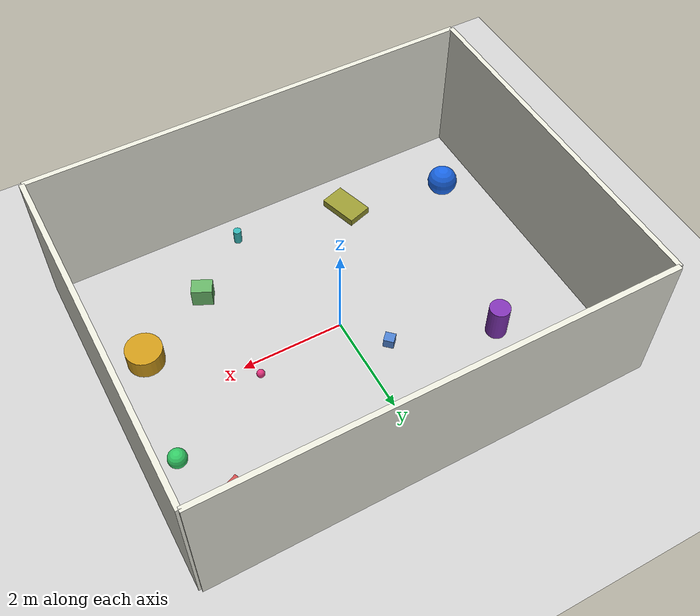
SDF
<?xml version="1.0" ?>
<sdf version="1.9">
  <world name="hexapod_world">

    <physics name="1ms" type="ignored">
      <max_step_size>0.001</max_step_size>
      <real_time_factor>1.0</real_time_factor>
      <real_time_update_rate>1000</real_time_update_rate>
    </physics>

    <plugin filename="gz-sim-physics-system"
            name="gz::sim::systems::Physics"/>

    <plugin filename="gz-sim-sensors-system"
            name="gz::sim::systems::Sensors">
      <render_engine>ogre2</render_engine>
    </plugin>

    <plugin filename="gz-sim-imu-system"
            name="gz::sim::systems::Imu"/>

    <plugin filename="gz-sim-contact-system"
            name="gz::sim::systems::Contact"/>

    <plugin filename="gz-sim-user-commands-system"
            name="gz::sim::systems::UserCommands"/>

    <plugin filename="gz-sim-scene-broadcaster-system"
            name="gz::sim::systems::SceneBroadcaster"/>

    <plugin filename="gz-sim-air-pressure-system"
            name="gz::sim::systems::AirPressure"/>

    <light type="directional" name="sun">
      <cast_shadows>true</cast_shadows>
      <pose>0 0 30 0 0 0</pose>
      <diffuse>0.8 0.8 0.8 1</diffuse>
      <specular>0.2 0.2 0.2 1</specular>
      <attenuation>
        <range>1000</range>
        <constant>0.9</constant>
        <linear>0.01</linear>
        <quadratic>0.001</quadratic>
      </attenuation>
      <direction>0 0 -1</direction>
    </light>

    <model name="ground_plane">
      <static>true</static>
      <link name="link">
        <collision name="collision">
          <geometry>
            <plane>
              <normal>0 0 1</normal>
              <size>100 100</size>
            </plane>
          </geometry>
        </collision>
        <visual name="visual">
          <geometry>
            <plane>
              <normal>0 0 1</normal>
              <size>100 100</size>
            </plane>
          </geometry>
          <material>
            <ambient>0.8 0.8 0.8 1</ambient>
            <diffuse>0.8 0.8 0.8 1</diffuse>
            <specular>0.8 0.8 0.8 1</specular>
          </material>
        </visual>
      </link>
    </model>

    <model name="wall_north">
      <static>true</static>
      <pose>4.35 0 1.45 0 0 0</pose>
      <link name="link">
        <collision name="collision">
          <geometry><box><size>0.1 6.8 2.9</size></box></geometry>
        </collision>
        <visual name="visual">
          <geometry><box><size>0.1 6.8 2.9</size></box></geometry>
          <material>
            <ambient>0.9 0.9 0.85 1</ambient>
            <diffuse>0.9 0.9 0.85 1</diffuse>
          </material>
        </visual>
      </link>
    </model>

    <model name="wall_south">
      <static>true</static>
      <pose>-4.35 0 1.45 0 0 0</pose>
      <link name="link">
        <collision name="collision">
          <geometry><box><size>0.1 6.8 2.9</size></box></geometry>
        </collision>
        <visual name="visual">
          <geometry><box><size>0.1 6.8 2.9</size></box></geometry>
          <material>
            <ambient>0.9 0.9 0.85 1</ambient>
            <diffuse>0.9 0.9 0.85 1</diffuse>
          </material>
        </visual>
      </link>
    </model>

    <model name="wall_east">
      <static>true</static>
      <pose>0 3.4 1.45 0 0 0</pose>
      <link name="link">
        <collision name="collision">
          <geometry><box><size>8.7 0.1 2.9</size></box></geometry>
        </collision>
        <visual name="visual">
          <geometry><box><size>8.7 0.1 2.9</size></box></geometry>
          <material>
            <ambient>0.9 0.9 0.85 1</ambient>
            <diffuse>0.9 0.9 0.85 1</diffuse>
          </material>
        </visual>
      </link>
    </model>

    <model name="wall_west">
      <static>true</static>
      <pose>0 -3.4 1.45 0 0 0</pose>
      <link name="link">
        <collision name="collision">
          <geometry><box><size>8.7 0.1 2.9</size></box></geometry>
        </collision>
        <visual name="visual">
          <geometry><box><size>8.7 0.1 2.9</size></box></geometry>
          <material>
            <ambient>0.9 0.9 0.85 1</ambient>
            <diffuse>0.9 0.9 0.85 1</diffuse>
          </material>
        </visual>
      </link>
    </model>

    <model name="box_large">
      <static>true</static>
      <pose>3.2 2.5 0.3 0 0 0.4</pose>
      <link name="link">
        <collision name="collision">
          <geometry><box><size>0.4 0.6 0.6</size></box></geometry>
        </collision>
        <visual name="visual">
          <geometry><box><size>0.4 0.6 0.6</size></box></geometry>
          <material>
            <ambient>0.8 0.3 0.3 1</ambient>
            <diffuse>0.8 0.3 0.3 1</diffuse>
          </material>
        </visual>
      </link>
    </model>

    <model name="box_small">
      <static>true</static>
      <pose>-0.6 0.8 0.1 0 0 0.8</pose>
      <link name="link">
        <collision name="collision">
          <geometry><box><size>0.2 0.2 0.2</size></box></geometry>
        </collision>
        <visual name="visual">
          <geometry><box><size>0.2 0.2 0.2</size></box></geometry>
          <material>
            <ambient>0.3 0.5 0.8 1</ambient>
            <diffuse>0.3 0.5 0.8 1</diffuse>
          </material>
        </visual>
      </link>
    </model>

    <model name="box_medium">
      <static>true</static>
      <pose>2.0 -1.8 0.2 0 0 1.1</pose>
      <link name="link">
        <collision name="collision">
          <geometry><box><size>0.3 0.4 0.4</size></box></geometry>
        </collision>
        <visual name="visual">
          <geometry><box><size>0.3 0.4 0.4</size></box></geometry>
          <material>
            <ambient>0.4 0.7 0.4 1</ambient>
            <diffuse>0.4 0.7 0.4 1</diffuse>
          </material>
        </visual>
      </link>
    </model>

    <model name="box_tall">
      <static>true</static>
      <pose>-3.0 2.8 0.5 0 0 0</pose>
      <link name="link">
        <collision name="collision">
          <geometry><box><size>0.2 0.2 1.0</size></box></geometry>
        </collision>
        <visual name="visual">
          <geometry><box><size>0.2 0.2 1.0</size></box></geometry>
          <material>
            <ambient>0.7 0.5 0.2 1</ambient>
            <diffuse>0.7 0.5 0.2 1</diffuse>
          </material>
        </visual>
      </link>
    </model>

    <model name="box_flat">
      <static>true</static>
      <pose>-1.5 -2.5 0.075 0 0 0.3</pose>
      <link name="link">
        <collision name="collision">
          <geometry><box><size>0.5 0.8 0.15</size></box></geometry>
        </collision>
        <visual name="visual">
          <geometry><box><size>0.5 0.8 0.15</size></box></geometry>
          <material>
            <ambient>0.6 0.6 0.2 1</ambient>
            <diffuse>0.6 0.6 0.2 1</diffuse>
          </material>
        </visual>
      </link>
    </model>

    <model name="cylinder_large">
      <static>true</static>
      <pose>-2.5 1.5 0.35 0 0 0</pose>
      <link name="link">
        <collision name="collision">
          <geometry><cylinder><radius>0.2</radius><length>0.7</length></cylinder></geometry>
        </collision>
        <visual name="visual">
          <geometry><cylinder><radius>0.2</radius><length>0.7</length></cylinder></geometry>
          <material>
            <ambient>0.5 0.2 0.7 1</ambient>
            <diffuse>0.5 0.2 0.7 1</diffuse>
          </material>
        </visual>
      </link>
    </model>

    <model name="cylinder_small">
      <static>true</static>
      <pose>0.8 -2.8 0.15 0 0 0</pose>
      <link name="link">
        <collision name="collision">
          <geometry><cylinder><radius>0.08</radius><length>0.3</length></cylinder></geometry>
        </collision>
        <visual name="visual">
          <geometry><cylinder><radius>0.08</radius><length>0.3</length></cylinder></geometry>
          <material>
            <ambient>0.2 0.7 0.7 1</ambient>
            <diffuse>0.2 0.7 0.7 1</diffuse>
          </material>
        </visual>
      </link>
    </model>

    <model name="cylinder_wide">
      <static>true</static>
      <pose>3.5 -1 0.2 0 0 0</pose>
      <link name="link">
        <collision name="collision">
          <geometry><cylinder><radius>0.35</radius><length>0.4</length></cylinder></geometry>
        </collision>
        <visual name="visual">
          <geometry><cylinder><radius>0.35</radius><length>0.4</length></cylinder></geometry>
          <material>
            <ambient>0.8 0.6 0.1 1</ambient>
            <diffuse>0.8 0.6 0.1 1</diffuse>
          </material>
        </visual>
      </link>
    </model>

    <model name="sphere_small">
      <static>true</static>
      <pose>1.8 0.3 0.08 0 0 0</pose>
      <link name="link">
        <collision name="collision">
          <geometry><sphere><radius>0.08</radius></sphere></geometry>
        </collision>
        <visual name="visual">
          <geometry><sphere><radius>0.08</radius></sphere></geometry>
          <material>
            <ambient>0.9 0.2 0.5 1</ambient>
            <diffuse>0.9 0.2 0.5 1</diffuse>
          </material>
        </visual>
      </link>
    </model>

    <model name="sphere_medium">
      <static>true</static>
      <pose>3.8 1.2 0.18 0 0 0</pose>
      <link name="link">
        <collision name="collision">
          <geometry><sphere><radius>0.18</radius></sphere></geometry>
        </collision>
        <visual name="visual">
          <geometry><sphere><radius>0.18</radius></sphere></geometry>
          <material>
            <ambient>0.2 0.8 0.4 1</ambient>
            <diffuse>0.2 0.8 0.4 1</diffuse>
          </material>
        </visual>
      </link>
    </model>

    <model name="sphere_large">
      <static>true</static>
      <pose>-3.5 -2 0.3 0 0 0</pose>
      <link name="link">
        <collision name="collision">
          <geometry><sphere><radius>0.3</radius></sphere></geometry>
        </collision>
        <visual name="visual">
          <geometry><sphere><radius>0.3</radius></sphere></geometry>
          <material>
            <ambient>0.1 0.4 0.9 1</ambient>
            <diffuse>0.1 0.4 0.9 1</diffuse>
          </material>
        </visual>
      </link>
    </model>

  </world>
</sdf>
